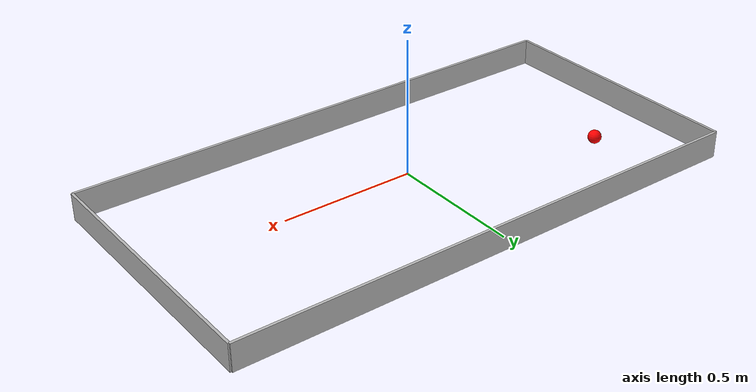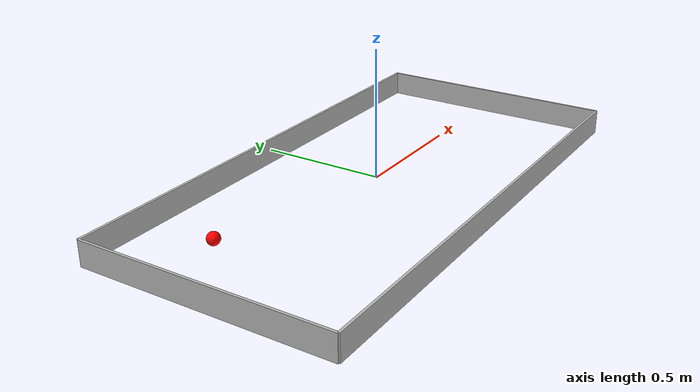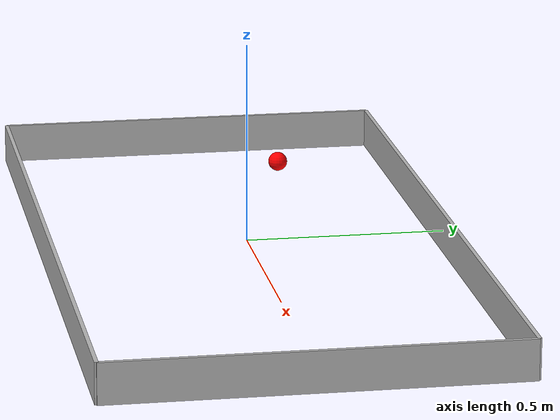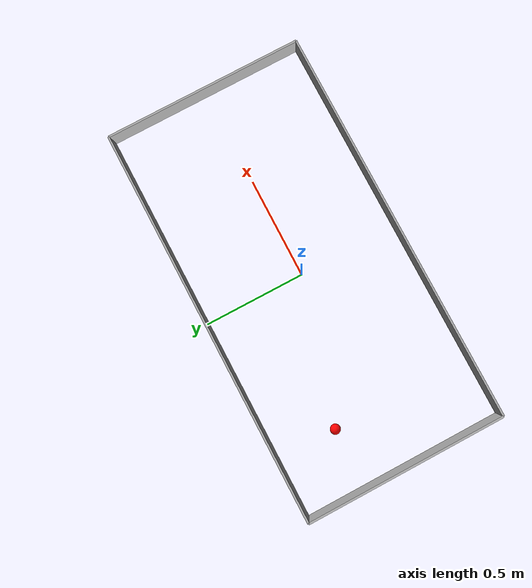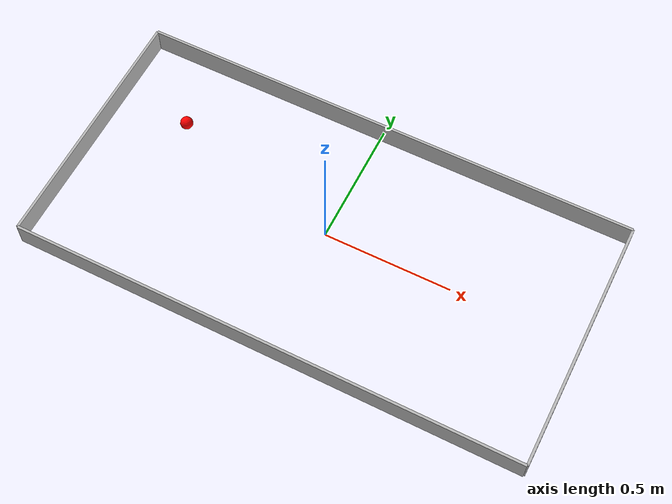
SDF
<?xml version="1.0"?>
<sdf version="1.10">
  <world name="mubot_tank">
    <!-- Zero gravity and a 0.25 ms step, as in the legacy mubot.world.
         real_time_factor 0 runs as fast as possible (training). -->
    <gravity>0 0 0</gravity>
    <physics name="quarter_ms" type="dart">
      <max_step_size>0.00025</max_step_size>
      <real_time_factor>1</real_time_factor>
    </physics>
    <plugin filename="gz-sim-physics-system" name="gz::sim::systems::Physics"/>
    <plugin filename="gz-sim-user-commands-system" name="gz::sim::systems::UserCommands"/>
    <plugin filename="gz-sim-scene-broadcaster-system" name="gz::sim::systems::SceneBroadcaster"/>
    <plugin filename="gz-sim-sensors-system" name="gz::sim::systems::Sensors">
      <render_engine>ogre2</render_engine>
    </plugin>
    <plugin filename="gz-sim-imu-system" name="gz::sim::systems::Imu"/>

    <light type="directional" name="sun">
      <pose>0 0 3 0 0 0</pose>
      <diffuse>0.9 0.9 0.9 1</diffuse>
      <direction>-0.3 0.2 -1</direction>
    </light>

    <!-- 2 m x 1 m tank walls. Regenerate with tools/generate_tank_world.py to
         add ArUco markers, obstacles and the target. -->
    <model name="tank">
      <static>true</static>
      <link name="walls">
        <collision name="north"><pose>0 0.5 0 0 0 0</pose><geometry><box><size>2 0.01 0.1</size></box></geometry></collision>
        <visual name="north"><pose>0 0.5 0 0 0 0</pose><geometry><box><size>2 0.01 0.1</size></box></geometry></visual>
        <collision name="south"><pose>0 -0.5 0 0 0 0</pose><geometry><box><size>2 0.01 0.1</size></box></geometry></collision>
        <visual name="south"><pose>0 -0.5 0 0 0 0</pose><geometry><box><size>2 0.01 0.1</size></box></geometry></visual>
        <collision name="east"><pose>1 0 0 0 0 0</pose><geometry><box><size>0.01 1 0.1</size></box></geometry></collision>
        <visual name="east"><pose>1 0 0 0 0 0</pose><geometry><box><size>0.01 1 0.1</size></box></geometry></visual>
        <collision name="west"><pose>-1 0 0 0 0 0</pose><geometry><box><size>0.01 1 0.1</size></box></geometry></collision>
        <visual name="west"><pose>-1 0 0 0 0 0</pose><geometry><box><size>0.01 1 0.1</size></box></geometry></visual>
      </link>
    </model>

    <model name="target">
      <static>true</static>
      <pose>-0.7 0.2 0 0 0 0</pose>
      <link name="ball">
        <visual name="v"><geometry><sphere><radius>0.025</radius></sphere></geometry>
          <material><ambient>1 0 0 1</ambient><diffuse>1 0 0 1</diffuse></material></visual>
      </link>
    </model>
  </world>
</sdf>
